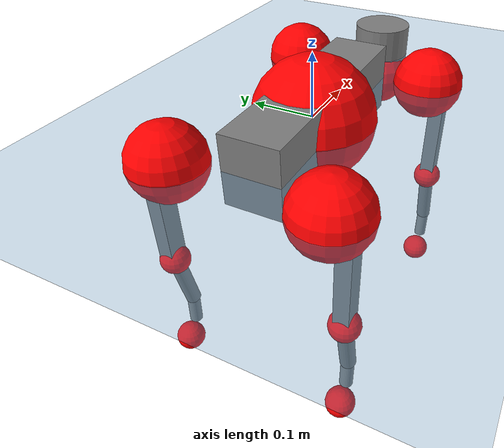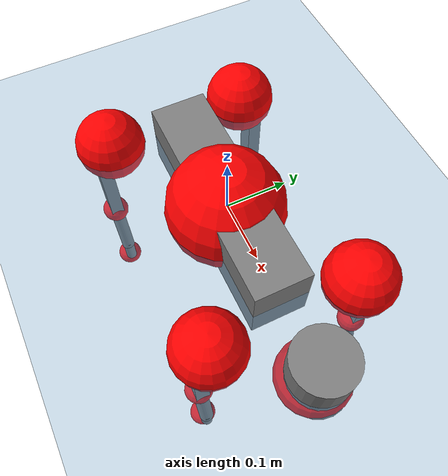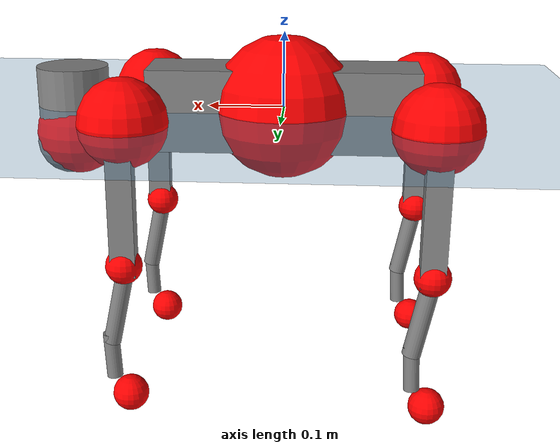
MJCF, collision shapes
<mujoco model="go2">
  <compiler angle="radian" assetdir="assets" balanceinertia="true" inertiafromgeom="false"/>

  <option timestep="0.005" density="1.2" viscosity="2e-05"/>

  <size nkey="1"/>

  <visual>
    <quality shadowsize="8192"/>
    <map shadowclip="0.5"/>
  </visual>

  <default>
    <default class="/">
      <geom contype="0" conaffinity="0" group="1" solref="-1000 -80"/>
      <site size="0.01 0.005 0.005" group="5"/>
      <general forcelimited="true" biastype="affine" gainprm="20" biasprm="0 -20 -0.5"/>
      <default class="go2">
        <joint armature="0.01" damping="0.01" frictionloss="0.2"/>
        <geom condim="1" margin="0.001"/>
        <default class="visual">
          <geom type="mesh" group="2"/>
        </default>
        <default class="collision">
          <geom group="3"/>
          <default class="foot">
            <geom size="0.022 0 0" condim="6" priority="1" friction="0.8 0.02 0.01" solimp="0.015 1 0.022"/>
          </default>
        </default>
        <default class="reward_collision_sphere">
          <geom group="5" rgba="1 0 0 1"/>
        </default>
      </default>
    </default>
  </default>

  <asset>
    <texture type="skybox" colorspace="auto" name="//unnamed_texture_0" builtin="gradient" rgb1="0.95 0.95 0.95" rgb2="0.95 0.95 0.95" width="100" height="600"/>
    <texture type="2d" colorspace="auto" name="texplane" builtin="checker" rgb1="0.345 0.575 0.748" rgb2="0.345 0.575 0.748" markrgb="1 1 1" width="512" height="512"/>
    <material name="MatPlane" class="/" texture="texplane" texuniform="true" texrepeat="2 2" specular="0.9"/>
    <material name="metal" class="/" rgba="0.9 0.95 0.95 1"/>
    <material name="black" class="/" rgba="0 0 0 1"/>
    <material name="white" class="/"/>
    <material name="gray" class="/" rgba="0.671705 0.692426 0.77427 1"/>
    <mesh name="base_0" class="/" file="base_0.obj"/>
    <mesh name="base_1" class="/" file="base_1.obj"/>
    <mesh name="base_2" class="/" file="base_2.obj"/>
    <mesh name="base_3" class="/" file="base_3.obj"/>
    <mesh name="base_4" class="/" file="base_4.obj"/>
    <mesh name="hip_0" class="/" file="hip_0.obj"/>
    <mesh name="hip_1" class="/" file="hip_1.obj"/>
    <mesh name="thigh_0" class="/" file="thigh_0.obj"/>
    <mesh name="thigh_1" class="/" file="thigh_1.obj"/>
    <mesh name="thigh_mirror_0" class="/" file="thigh_mirror_0.obj"/>
    <mesh name="thigh_mirror_1" class="/" file="thigh_mirror_1.obj"/>
    <mesh name="calf_0" class="/" file="calf_0.obj"/>
    <mesh name="calf_1" class="/" file="calf_1.obj"/>
    <mesh name="calf_mirror_0" class="/" file="calf_mirror_0.obj"/>
    <mesh name="calf_mirror_1" class="/" file="calf_mirror_1.obj"/>
    <mesh name="foot" class="/" file="foot.obj"/>
  </asset>

  <worldbody>
    <geom name="floor" class="/" size="100 100 0.125" type="plane" group="0" material="MatPlane"/>
    <light name="toplight_shadow" class="/" pos="0 0 5" dir="0.0990148 0.0990148 -0.990148" type="directional" ambient="0.04 0.04 0.04" diffuse="0.55 0.55 0.55" specular="0.12 0.12 0.12"/>
    <light name="toplight_fill" class="/" pos="0 0 5" dir="0.0990148 0.0990148 -0.990148" type="directional" castshadow="false" ambient="0.04 0.04 0.04" diffuse="0.3 0.3 0.3" specular="0.08 0.08 0.08"/>
    <body name="trunk" childclass="go2" pos="0.0002099 -0.00199309 0.000327364" quat="1 -2.36055e-05 1.85749e-05 1.81271e-06">
      <inertial pos="0.0201375 -0.00235982 -0.0048663" quat="0.00400493 0.719546 0.00679829 0.6944" mass="5.89148" diaginertia="0.105127 0.0998332 0.0110929"/>
      <joint name="//unnamed_joint_0" type="free" armature="0" damping="0" frictionloss="0"/>
      <geom name="//unnamed_geom_1" class="visual" material="black" mesh="base_0"/>
      <geom name="//unnamed_geom_2" class="visual" material="black" mesh="base_1"/>
      <geom name="//unnamed_geom_3" class="visual" material="black" mesh="base_2"/>
      <geom name="//unnamed_geom_4" class="visual" material="white" mesh="base_3"/>
      <geom name="//unnamed_geom_5" class="visual" material="gray" mesh="base_4"/>
      <geom name="trunk_1" class="collision" size="0.179158 0.0445276 0.0542903" type="box"/>
      <geom name="trunk_2" class="collision" size="0.0476231 0.0428608" pos="0.284102 0 0.00854628" type="cylinder"/>
      <geom name="trunk_3" class="collision" size="0.0447657" pos="0.292076 0 -0.0512777"/>
      <geom name="//unnamed_geom_9" class="reward_collision_sphere" size="0.0952461"/>
      <geom name="//unnamed_geom_10" class="reward_collision_sphere" size="0.0571477" pos="0.279117 0 -0.0384583"/>
      <site name="imu" pos="-0.016203 0.0031024 0.0262338" size="0.00952461"/>
      <camera name="track" pos="0 -2.01182 0" quat="0.707107 0.707107 0 0" mode="trackcom"/>
      <camera name="ego_camera" pos="0.311017 0 0.0384583" quat="-0.5 -0.5 0.5 0.5"/>
      <body name="FL_hip" pos="0.193556 0.0494208 0.00294421" quat="1 0.000101233 -0.000695177 -0.000709975">
        <inertial pos="-0.00485892 0.0020303 0.000419638" quat="0.496951 0.499833 0.505265 0.49791" mass="0.569994" diaginertia="0.000868997 0.000593532 0.000219869"/>
        <joint name="FL_hip_joint" pos="0 0 0" axis="1 5.33722e-05 0.000335942" stiffness="0.0151358" range="-0.996834 1.05405" armature="0.00918316" damping="0" frictionloss="0.203489"/>
        <geom name="//unnamed_geom_11" class="visual" material="metal" mesh="hip_0"/>
        <geom name="//unnamed_geom_12" class="visual" material="gray" mesh="hip_1"/>
        <geom name="//unnamed_geom_13" class="collision" size="0.0438132 0.0190492" pos="0 0.0804726 0" quat="0.707107 0.707107 0 0" type="cylinder"/>
        <geom name="//unnamed_geom_14" class="reward_collision_sphere" size="0.0571477" pos="0 0.0704136 0"/>
        <body name="FL_thigh" pos="5.56558e-05 0.0984737 0.00196705" quat="1 0.000281018 -0.000572458 0.000627767">
          <inertial pos="-0.00228688 -0.0214257 -0.028499" quat="0.823997 0.0827069 -0.0267446 0.559888" mass="0.995639" diaginertia="0.00591371 0.00606554 0.000408505"/>
          <joint name="FL_thigh_joint" pos="0 0 0" axis="0.00219774 0.999869 0.0160274" stiffness="0.00713066" range="-1.56657 3.5442" armature="0.0105744" damping="0.00187288" frictionloss="0.183389"/>
          <geom name="//unnamed_geom_15" class="visual" material="metal" mesh="thigh_0"/>
          <geom name="//unnamed_geom_16" class="visual" material="gray" mesh="thigh_1"/>
          <geom name="//unnamed_geom_17" class="collision" size="0.101437 0.0116677 0.0161918" pos="0 0 -0.0910179" quat="0.707107 0 0.707107 0" type="box"/>
          <body name="FL_calf" pos="0.000961118 -0.00317673 -0.181612" quat="1 -0.000196928 5.31574e-06 -9.29031e-05">
            <inertial pos="0.00760672 -0.000526409 -0.123098" quat="0.710783 0.000973583 -0.00509726 0.703392" mass="0.208127" diaginertia="0.00142703 0.00155226 2.33391e-05"/>
            <joint name="FL_calf_joint" pos="0 0 0" axis="-0.00706082 0.999974 -0.00154992" range="-2.77609 -0.844991" armature="0.00903672" damping="0.00365272" frictionloss="0.188724"/>
            <geom name="//unnamed_geom_18" class="visual" material="gray" mesh="calf_0"/>
            <geom name="//unnamed_geom_19" class="visual" material="black" mesh="calf_1"/>
            <geom name="FL_calf0" class="collision" size="0.0114295 0.0571477" pos="0.00797478 0 -0.0512777" quat="0.994493 0 -0.104807 0" type="cylinder"/>
            <geom name="//unnamed_geom_21" class="collision" size="0.0104771 0.030955" pos="0.019937 0 -0.126485" quat="0.999688 0 0.0249974 0" type="cylinder"/>
            <geom name="//unnamed_geom_22" class="visual" pos="0 0 -0.182036" quat="1 0 0 0" material="black" mesh="foot"/>
            <geom name="FL_foot" class="foot" size="0.016683" pos="-0.0019937 0 -0.182036"/>
            <geom name="//unnamed_geom_24" class="reward_collision_sphere" size="0.0238115"/>
            <geom name="//unnamed_geom_25" class="reward_collision_sphere" size="0.0238115" pos="-0.0019937 0 -0.182036"/>
            <site name="FL_foot" class="foot" pos="-0.0019937 0 -0.182036" size="0.00952461"/>
          </body>
        </body>
      </body>
      <body name="FR_hip" pos="0.192239 -0.047683 -0.00193416" quat="1 0.000259483 -0.000202155 -5.32461e-05">
        <inertial pos="-0.00429176 -0.00239631 -0.00140711" quat="0.497364 0.505207 0.49805 0.49934" mass="0.570579" diaginertia="0.000885448 0.000596628 0.000225725"/>
        <joint name="FR_hip_joint" pos="0 0 0" axis="0.999985 -0.00518011 -0.00150413" stiffness="0.00260858" range="-1.05095 1.03685" armature="0.00900505" damping="0.0142525" frictionloss="0.182668"/>
        <geom name="//unnamed_geom_26" class="visual" pos="0 1.31789e-09 5.65268e-08" quat="4.63268e-05 1 0 0" material="metal" mesh="hip_0"/>
        <geom name="//unnamed_geom_27" class="visual" pos="0 2.13645e-09 -1.39812e-07" quat="4.63268e-05 1 0 0" material="gray" mesh="hip_1"/>
        <geom name="//unnamed_geom_28" class="collision" size="0.0438132 0.0190492" pos="0 -0.0804726 0" quat="0.707107 0.707107 0 0" type="cylinder"/>
        <geom name="//unnamed_geom_29" class="reward_collision_sphere" size="0.0571477" pos="0 -0.0704136 0"/>
        <body name="FR_thigh" pos="0.00299502 -0.0937526 0.00291489" quat="1 -7.16248e-06 -3.30701e-05 1.55324e-05">
          <inertial pos="-0.00256681 0.0198333 -0.0283618" quat="0.552523 -0.0176633 0.0881621 0.828634" mass="1.04429" diaginertia="0.00605581 0.00618439 0.000415392"/>
          <joint name="FR_thigh_joint" pos="0 0 0" axis="-0.000474664 -1 -2.02882e-05" stiffness="0.00348664" range="-3.5434 1.56744" armature="0.00961209" damping="0.00963139" frictionloss="0.189828"/>
          <geom name="//unnamed_geom_30" class="visual" material="metal" mesh="thigh_mirror_0"/>
          <geom name="//unnamed_geom_31" class="visual" material="gray" mesh="thigh_mirror_1"/>
          <geom name="//unnamed_geom_32" class="collision" size="0.101437 0.0116677 0.0161918" pos="0 0 -0.0910179" quat="0.707107 0 0.707107 0" type="box"/>
          <body name="FR_calf" pos="-0.0027732 -7.603e-05 -0.182897" quat="0.999999 -0.000513775 -0.00108909 -0.000191008">
            <inertial pos="0.00582691 0.0006746 -0.119842" quat="0.702582 -0.00407024 -0.00306228 0.711585" mass="0.209796" diaginertia="0.00145084 0.00151216 2.39682e-05"/>
            <joint name="FR_calf_joint" pos="0 0 0" axis="0.0131678 -0.999913 -0.000569176" range="0.825854 2.73253" armature="0.0107181" damping="0.0230457" frictionloss="0.167916"/>
            <geom name="//unnamed_geom_33" class="visual" material="gray" mesh="calf_mirror_0"/>
            <geom name="//unnamed_geom_34" class="visual" material="black" mesh="calf_mirror_1"/>
            <geom name="FR_calf0" class="collision" size="0.012382 0.0571477" pos="0.00996848 0 -0.0512777" quat="0.995004 0 -0.0998334 0" type="cylinder"/>
            <geom name="//unnamed_geom_36" class="collision" size="0.0104771 0.030955" pos="0.019937 0 -0.126485" quat="0.999688 0 0.0249974 0" type="cylinder"/>
            <geom name="//unnamed_geom_37" class="visual" pos="0 0 -0.182036" quat="1 0 0 0" material="black" mesh="foot"/>
            <geom name="FR_foot" class="foot" size="0.0209497" pos="-0.0019937 0 -0.182036"/>
            <geom name="//unnamed_geom_39" class="reward_collision_sphere" size="0.0238115"/>
            <geom name="//unnamed_geom_40" class="reward_collision_sphere" size="0.0238115" pos="-0.0019937 0 -0.182036"/>
            <site name="FR_foot" class="foot" pos="-0.0019937 0 -0.182036" size="0.00952461"/>
          </body>
        </body>
      </body>
      <body name="RL_hip" pos="-0.192525 0.0477967 0.000877389" quat="1 -6.61234e-05 2.77138e-05 -4.37702e-06">
        <inertial pos="0.00528105 6.40316e-05 0.000774241" quat="0.504008 0.494685 0.49955 0.501709" mass="0.57515" diaginertia="0.000866774 0.000610356 0.000218532"/>
        <joint name="RL_hip_joint" pos="0 0 0" axis="-0.999939 0.0101677 0.00434639" stiffness="0.00366198" range="-1.06662 1.05161" armature="0.00969848" damping="0.0129878" frictionloss="0.18237"/>
        <geom name="//unnamed_geom_41" class="visual" pos="-1.23896e-09 0 -2.42864e-07" quat="4.63268e-05 0 1 0" material="metal" mesh="hip_0"/>
        <geom name="//unnamed_geom_42" class="visual" pos="-2.0085e-09 0 -2.15386e-07" quat="4.63268e-05 0 1 0" material="gray" mesh="hip_1"/>
        <geom name="//unnamed_geom_43" class="collision" size="0.0438132 0.0190492" pos="0 0.0804726 0" quat="0.707107 0.707107 0 0" type="cylinder"/>
        <geom name="//unnamed_geom_44" class="reward_collision_sphere" size="0.0571477" pos="0 0.0704136 0"/>
        <body name="RL_thigh" pos="-0.000969461 0.0964306 -0.00183252" quat="1 -1.13384e-05 -8.33229e-05 0.000440612">
          <inertial pos="-0.00351313 -0.0225173 -0.0306915" quat="0.829211 0.0845482 -0.0235979 0.552" mass="1.01892" diaginertia="0.00588081 0.00592925 0.000395432"/>
          <joint name="RL_thigh_joint" pos="0 0 0" axis="0.00453362 0.999985 -0.00318118" stiffness="0.00143288" range="-0.561505 4.55452" armature="0.00980162" damping="0" frictionloss="0.187511"/>
          <geom name="//unnamed_geom_45" class="visual" material="metal" mesh="thigh_0"/>
          <geom name="//unnamed_geom_46" class="visual" material="gray" mesh="thigh_1"/>
          <geom name="//unnamed_geom_47" class="collision" size="0.101437 0.0116677 0.0161918" pos="0 0 -0.0910179" quat="0.707107 0 0.707107 0" type="box"/>
          <body name="RL_calf" pos="-0.00105854 -0.00320192 -0.182919" quat="1 0.000112085 0.000554408 0.000129315">
            <inertial pos="0.00585308 -0.000911902 -0.12045" quat="0.709072 0.00306009 -0.00398177 0.705118" mass="0.213304" diaginertia="0.00152813 0.00151312 2.45446e-05"/>
            <joint name="RL_calf_joint" pos="0 0 0" axis="-0.00824705 0.999966 -4.71791e-05" range="-2.6679 -0.874689" armature="0.00972034" damping="0.0053343" frictionloss="0.191916"/>
            <geom name="//unnamed_geom_48" class="visual" material="gray" mesh="calf_0"/>
            <geom name="//unnamed_geom_49" class="visual" material="black" mesh="calf_1"/>
            <geom name="RL_calf0" class="collision" size="0.012382 0.0571477" pos="0.00996848 0 -0.0512777" quat="0.995004 0 -0.0998334 0" type="cylinder"/>
            <geom name="//unnamed_geom_51" class="collision" size="0.0104771 0.030955" pos="0.019937 0 -0.126485" quat="0.999688 0 0.0249974 0" type="cylinder"/>
            <geom name="//unnamed_geom_52" class="visual" pos="0 0 -0.182036" quat="1 0 0 0" material="black" mesh="foot"/>
            <geom name="RL_foot" class="foot" size="0.0178035" pos="-0.0019937 0 -0.182036"/>
            <geom name="//unnamed_geom_54" class="reward_collision_sphere" size="0.0238115"/>
            <geom name="//unnamed_geom_55" class="reward_collision_sphere" size="0.0238115" pos="-0.0019937 0 -0.182036"/>
            <site name="RL_foot" class="foot" pos="-0.0019937 0 -0.182036" size="0.00952461"/>
          </body>
        </body>
      </body>
      <body name="RR_hip" pos="-0.193566 -0.0476657 -0.00260592" quat="0.999999 -0.000183798 0.000117017 -0.00107409">
        <inertial pos="0.00436971 0.000479287 -0.00125782" quat="0.501241 0.498108 0.499684 0.50096" mass="0.594521" diaginertia="0.000897916 0.00061335 0.000227848"/>
        <joint name="RR_hip_joint" pos="0 0 0" axis="-0.999934 -0.00686939 -0.0091767" range="-1.04466 0.996059" armature="0.00956424" damping="0.00442421" frictionloss="0.191853"/>
        <geom name="//unnamed_geom_56" class="visual" pos="1.23927e-09 1.31789e-09 -2.99391e-07" quat="2.14617e-09 4.63268e-05 4.63268e-05 -1" material="metal" mesh="hip_0"/>
        <geom name="//unnamed_geom_57" class="visual" pos="2.00772e-09 2.13645e-09 -7.55736e-08" quat="2.14617e-09 4.63268e-05 4.63268e-05 -1" material="gray" mesh="hip_1"/>
        <geom name="//unnamed_geom_58" class="collision" size="0.0438132 0.0190492" pos="0 -0.0804726 0" quat="0.707107 0.707107 0 0" type="cylinder"/>
        <geom name="//unnamed_geom_59" class="reward_collision_sphere" size="0.0571477" pos="0 -0.0704136 0"/>
        <body name="RR_thigh" pos="0.00013378 -0.0943477 0.00047609" quat="0.999999 -2.71501e-05 6.28482e-05 0.00125342">
          <inertial pos="-0.00344369 0.0199313 -0.0270728" quat="0.552133 -0.019711 0.0799856 0.829677" mass="0.991684" diaginertia="0.00582296 0.00598081 0.000396599"/>
          <joint name="RR_thigh_joint" pos="0 0 0" axis="0.00259934 -0.999964 -0.00808375" range="-4.54569 0.537576" armature="0.0092258" damping="0.0202963" frictionloss="0.18364"/>
          <geom name="//unnamed_geom_60" class="visual" material="metal" mesh="thigh_mirror_0"/>
          <geom name="//unnamed_geom_61" class="visual" material="gray" mesh="thigh_mirror_1"/>
          <geom name="//unnamed_geom_62" class="collision" size="0.101437 0.0116677 0.0161918" pos="0 0 -0.0910179" quat="0.707107 0 0.707107 0" type="box"/>
          <body name="RR_calf" pos="-0.00193063 -0.000928906 -0.182761" quat="1 6.1373e-06 -2.284e-05 -1.41269e-05">
            <inertial pos="0.00862332 0.000672658 -0.119974" quat="0.703463 -0.00759545 0.000326136 0.710692" mass="0.206596" diaginertia="0.00151035 0.00152284 2.38946e-05"/>
            <joint name="RR_calf_joint" pos="0 0 0" axis="-0.00816944 -0.999953 0.00526022" range="0.794138 2.77895" armature="0.00831366" damping="0.00840227" frictionloss="0.187523"/>
            <geom name="//unnamed_geom_63" class="visual" material="gray" mesh="calf_mirror_0"/>
            <geom name="//unnamed_geom_64" class="visual" material="black" mesh="calf_mirror_1"/>
            <geom name="RR_calf0" class="collision" size="0.012382 0.0571477" pos="0.00996848 0 -0.0512777" quat="0.995004 0 -0.0998334 0" type="cylinder"/>
            <geom name="//unnamed_geom_66" class="collision" size="0.0104771 0.030955" pos="0.019937 0 -0.126485" quat="0.999688 0 0.0249974 0" type="cylinder"/>
            <geom name="//unnamed_geom_67" class="visual" pos="0 0 -0.182036" quat="1 0 0 0" material="black" mesh="foot"/>
            <geom name="RR_foot" class="foot" size="0.0196543" pos="-0.0019937 0 -0.182036"/>
            <geom name="//unnamed_geom_69" class="reward_collision_sphere" size="0.0238115"/>
            <geom name="//unnamed_geom_70" class="reward_collision_sphere" size="0.0238115" pos="-0.0019937 0 -0.182036"/>
            <site name="RR_foot" class="foot" pos="-0.0019937 0 -0.182036" size="0.00952461"/>
          </body>
        </body>
      </body>
    </body>
  </worldbody>

  <contact>
    <pair class="/" geom1="floor" geom2="FL_foot" name="//unnamed_contact_0"/>
    <pair class="/" geom1="floor" geom2="FR_foot" name="//unnamed_contact_1"/>
    <pair class="/" geom1="floor" geom2="RL_foot" name="//unnamed_contact_2"/>
    <pair class="/" geom1="floor" geom2="RR_foot" name="//unnamed_contact_3"/>
  </contact>

  <actuator>
    <general name="FL_hip" class="/" joint="FL_hip_joint" forcerange="-24.7775 24.7775" gainprm="20.3976" biasprm="0 -20.3976 -0.465678"/>
    <general name="FL_thigh" class="/" joint="FL_thigh_joint" forcerange="-21.6222 21.6222" gainprm="20.3976" biasprm="0 -20.3976 -0.465678"/>
    <general name="FL_calf" class="/" joint="FL_calf_joint" forcerange="-44.7951 44.7951" gainprm="20.3976" biasprm="0 -20.3976 -0.465678"/>
    <general name="FR_hip" class="/" joint="FR_hip_joint" forcerange="-24.7533 24.7533" gainprm="20.3976" biasprm="0 -20.3976 -0.465678"/>
    <general name="FR_thigh" class="/" joint="FR_thigh_joint" forcerange="-24.7577 24.7577" gainprm="20.3976" biasprm="0 -20.3976 -0.465678"/>
    <general name="FR_calf" class="/" joint="FR_calf_joint" forcerange="-45.3336 45.3336" gainprm="20.3976" biasprm="0 -20.3976 -0.465678"/>
    <general name="RL_hip" class="/" joint="RL_hip_joint" forcerange="-23.4184 23.4184" gainprm="20.3976" biasprm="0 -20.3976 -0.465678"/>
    <general name="RL_thigh" class="/" joint="RL_thigh_joint" forcerange="-22.2544 22.2544" gainprm="20.3976" biasprm="0 -20.3976 -0.465678"/>
    <general name="RL_calf" class="/" joint="RL_calf_joint" forcerange="-42.2669 42.2669" gainprm="20.3976" biasprm="0 -20.3976 -0.465678"/>
    <general name="RR_hip" class="/" joint="RR_hip_joint" forcerange="-20.3394 20.3394" gainprm="20.3976" biasprm="0 -20.3976 -0.465678"/>
    <general name="RR_thigh" class="/" joint="RR_thigh_joint" forcerange="-22.747 22.747" gainprm="20.3976" biasprm="0 -20.3976 -0.465678"/>
    <general name="RR_calf" class="/" joint="RR_calf_joint" forcerange="-42.7038 42.7038" gainprm="20.3976" biasprm="0 -20.3976 -0.465678"/>
  </actuator>

  <sensor>
    <gyro site="imu" name="imu_angular_velocity"/>
    <velocimeter site="imu" name="imu_linear_velocity"/>
    <framelinvel objtype="site" objname="FL_foot" name="FL_foot_global_linear_velocity"/>
    <framelinvel objtype="site" objname="FR_foot" name="FR_foot_global_linear_velocity"/>
    <framelinvel objtype="site" objname="RL_foot" name="RL_foot_global_linear_velocity"/>
    <framelinvel objtype="site" objname="RR_foot" name="RR_foot_global_linear_velocity"/>
  </sensor>

  <keyframe>
    <key name="home" qpos="0 0 0.325 1 0 0 0 0.1 0.8 -1.5 -0.1 -0.8 1.5 -0.1 0.8 -1.5 0.1 -0.8 1.5"/>
  </keyframe>
</mujoco>
